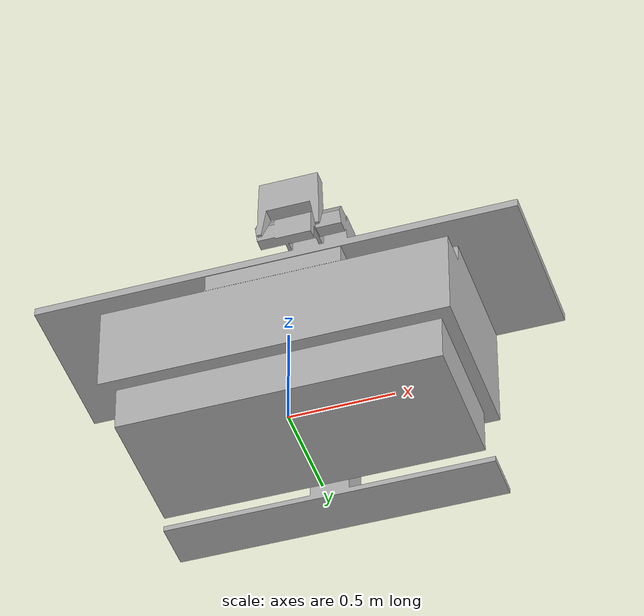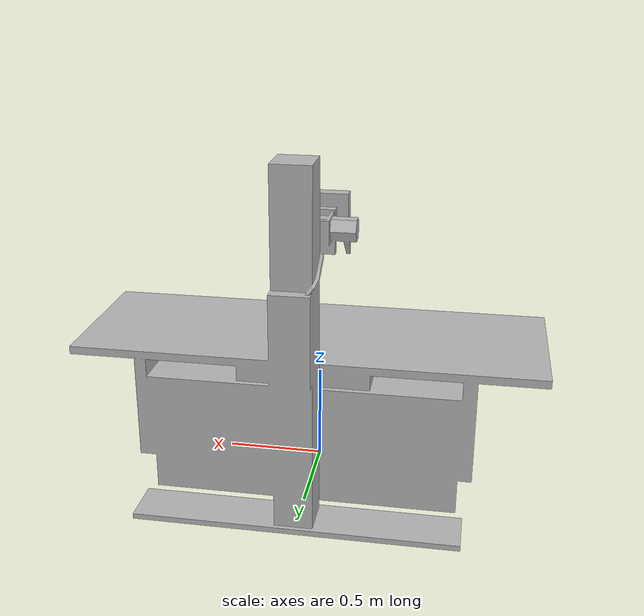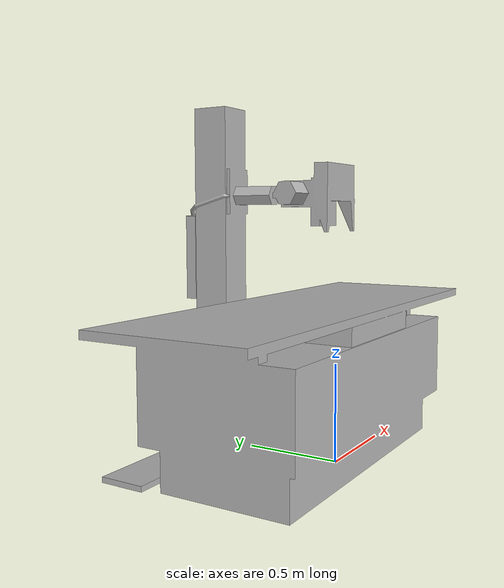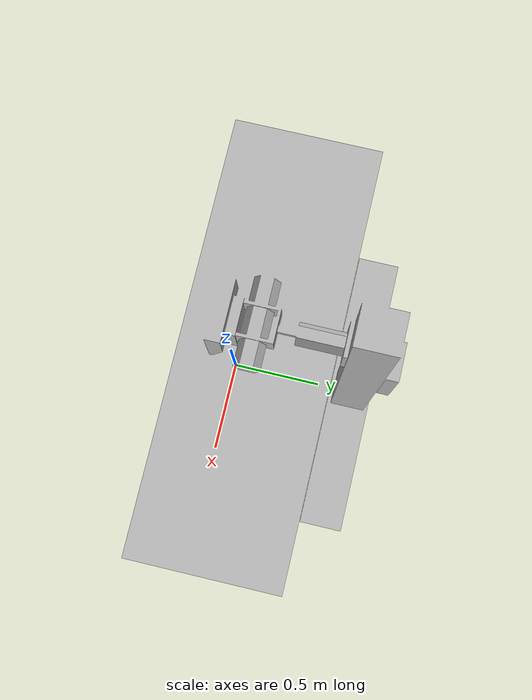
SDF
<?xml version='1.0' encoding='utf-8'?>
<sdf version="1.6">
  <model name="XRayMachine">
   <static>true</static>
    <link name="body">
      <pose>0 0 0 0 0 0</pose>

      <visual name="visual">
        <geometry>
          <mesh>
            <uri>model://XRayMachine/meshes/XRayMachine.obj</uri>
          </mesh>
        </geometry>
      </visual>

      <collision name="collision">
        <geometry>
          <mesh>
            <uri>model://XRayMachine/meshes/XRayMachine_Col.obj</uri>
          </mesh>
        </geometry>
      </collision>

    </link>
  </model>
</sdf>
